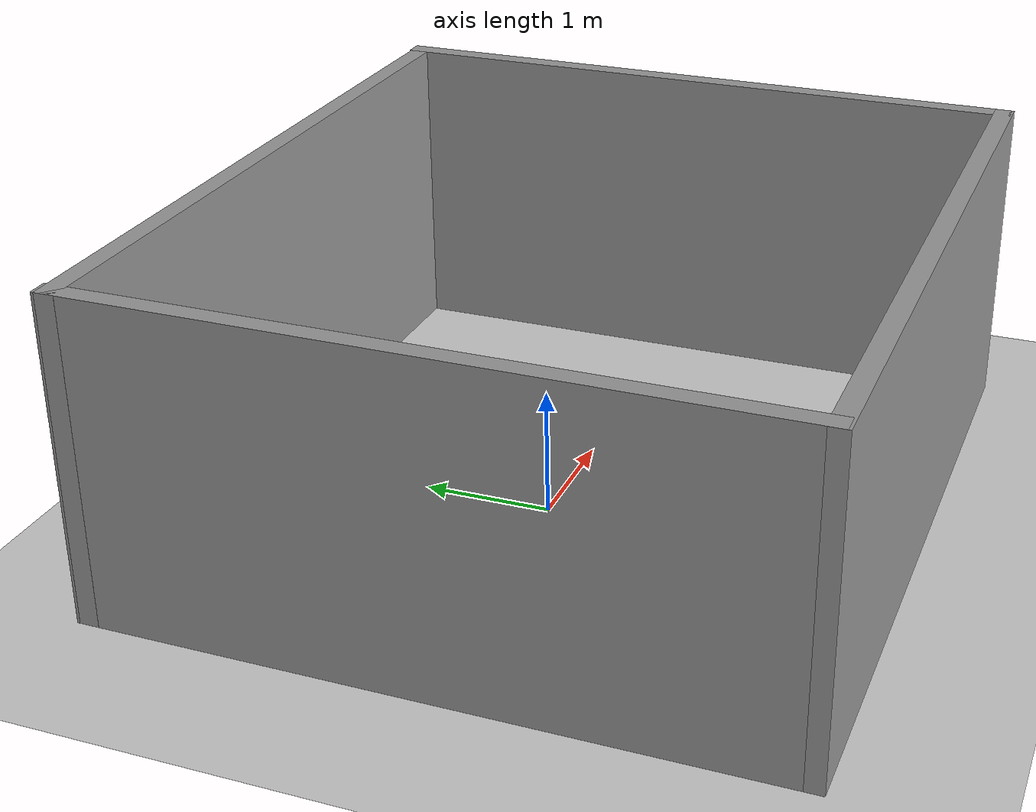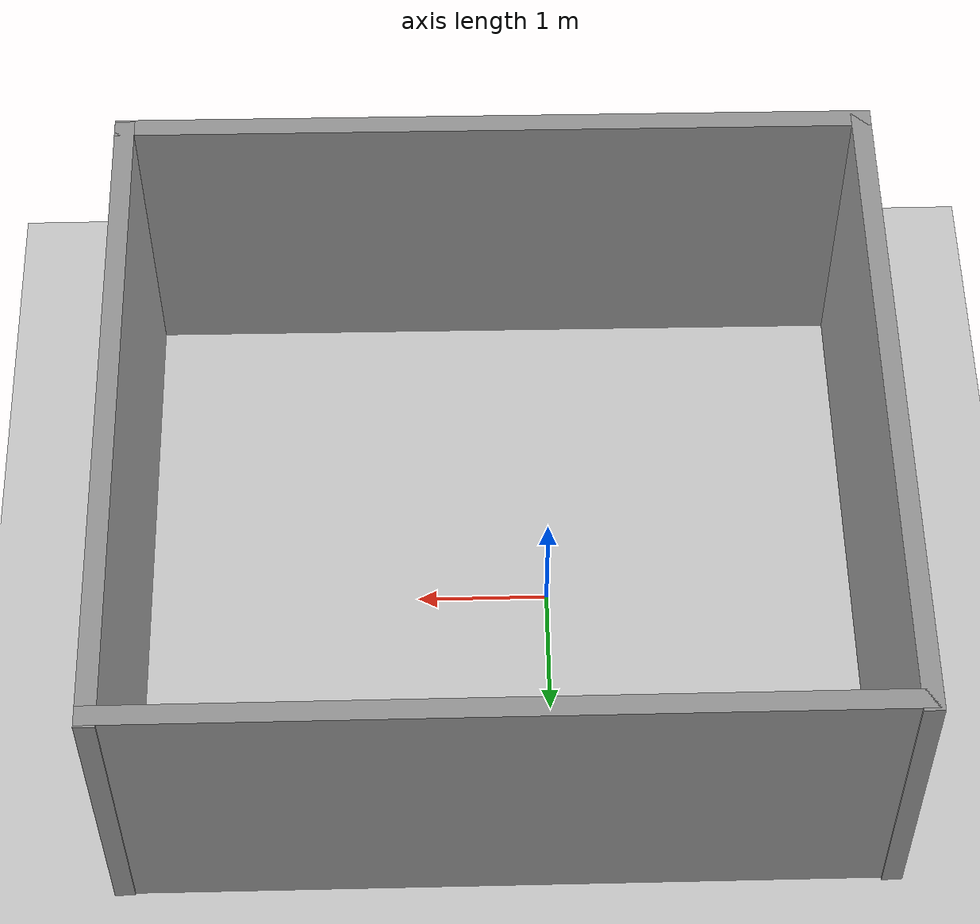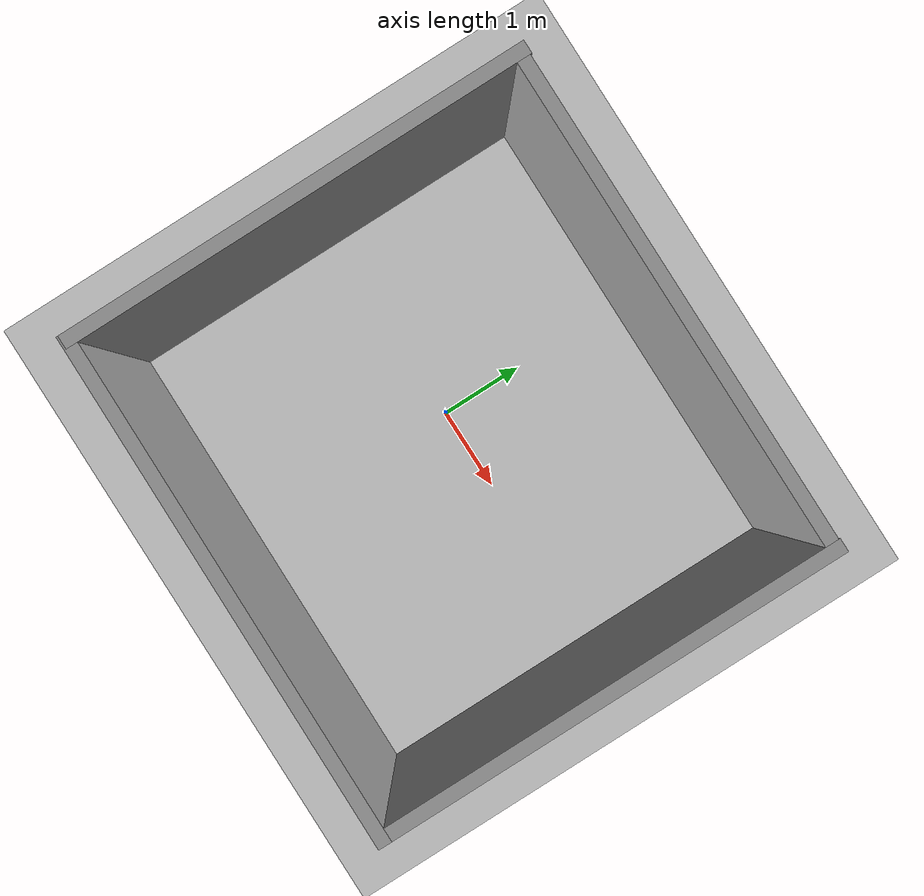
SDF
<sdf version="1.7">
 <world name="default">
  <light name="sun" type="directional">
   <pose>0 0 10 0 -0 0</pose>
   <diffuse>0.8 0.8 0.8 1</diffuse>
   <specular>0.2 0.2 0.2 1</specular>
   <attenuation>
    <range>1000</range>
    <constant>0.9</constant>
    <linear>0.01</linear>
    <quadratic>0.001</quadratic>
   </attenuation>
   <direction>-0.5 0.1 -0.9</direction>
   <spot><inner_angle>0</inner_angle><outer_angle>0</outer_angle><falloff>0</falloff></spot>
  </light>
  <model name="ground_plane">
   <static>1</static>
   <link name="link">
    <collision name="collision">
     <geometry><plane><normal>0 0 1</normal><size>100 100</size></plane></geometry>
     <surface>
      <contact><collide_bitmask>65535</collide_bitmask></contact>
      <friction><ode><mu>100</mu><mu2>50</mu2></ode></friction>
     </surface>
    </collision>
    <visual name="visual">
     <cast_shadows>0</cast_shadows>
     <geometry><plane><normal>0 0 1</normal><size>100 100</size></plane></geometry>
     <material>
      <script><uri>file://media/materials/scripts/gazebo.material</uri><name>Gazebo/Grey</name></script>
     </material>
    </visual>
   </link>
  </model>
  <gravity>0 0 -9.8</gravity>
  <magnetic_field>6e-06 2.3e-05 -4.2e-05</magnetic_field>
  <atmosphere type="adiabatic"/>
  <physics type="ode">
   <max_step_size>0.001</max_step_size>
   <real_time_factor>1</real_time_factor>
   <real_time_update_rate>1000</real_time_update_rate>
  </physics>
  <scene><ambient>0.4 0.4 0.4 1</ambient><background>0.7 0.7 0.7 1</background><shadows>1</shadows></scene>
  <spherical_coordinates>
   <surface_model>EARTH_WGS84</surface_model>
   <latitude_deg>0</latitude_deg>
   <longitude_deg>0</longitude_deg>
   <elevation>0</elevation>
   <heading_deg>0</heading_deg>
  </spherical_coordinates>
  <model name="my_world1">
   <pose>0.354001 -0.151987 0 0 -0 0</pose>
   <link name="Wall_12">
    <collision name="Wall_12_Collision">
     <geometry><box><size>5.25 0.15 2.5</size></box></geometry>
     <pose>0 0 1.25 0 -0 0</pose>
    </collision>
    <visual name="Wall_12_Visual">
     <pose>0 0 1.25 0 -0 0</pose>
     <geometry><box><size>5.25 0.15 2.5</size></box></geometry>
     <material>
      <script><uri>file://media/materials/scripts/gazebo.material</uri><name>Gazebo/Grey</name></script>
      <ambient>1 1 1 1</ambient>
     </material>
     <meta><layer>0</layer></meta>
    </visual>
    <pose>-2.80715 0.023543 0 0 -0 -1.5708</pose>
   </link>
   <link name="Wall_15">
    <collision name="Wall_15_Collision">
     <geometry><box><size>5.76498 0.15 2.5</size></box></geometry>
     <pose>0 0 1.25 0 -0 0</pose>
    </collision>
    <visual name="Wall_15_Visual">
     <pose>0 0 1.25 0 -0 0</pose>
     <geometry><box><size>5.76498 0.15 2.5</size></box></geometry>
     <material>
      <script><uri>file://media/materials/scripts/gazebo.material</uri><name>Gazebo/Grey</name></script>
      <ambient>1 1 1 1</ambient>
     </material>
     <meta><layer>0</layer></meta>
    </visual>
    <pose>0 -2.55982 0 0 -0 -0.004761</pose>
   </link>
   <link name="Wall_16">
    <collision name="Wall_16_Collision">
     <geometry><box><size>5.28088 0.15 2.5</size></box></geometry>
     <pose>0 0 1.25 0 -0 0</pose>
    </collision>
    <visual name="Wall_16_Visual">
     <pose>0 0 1.25 0 -0 0</pose>
     <geometry><box><size>5.28088 0.15 2.5</size></box></geometry>
     <material>
      <script><uri>file://media/materials/scripts/gazebo.material</uri><name>Gazebo/Grey</name></script>
      <ambient>1 1 1 1</ambient>
     </material>
     <meta><layer>0</layer></meta>
    </visual>
    <pose>2.80715 0.007376 0 0 -0 1.5708</pose>
   </link>
   <link name="Wall_17">
    <collision name="Wall_17_Collision">
     <geometry><box><size>5.76459 0.15 2.5</size></box></geometry>
     <pose>0 0 1.25 0 -0 0</pose>
    </collision>
    <visual name="Wall_17_Visual">
     <pose>0 0 1.25 0 -0 0</pose>
     <geometry><box><size>5.76459 0.15 2.5</size></box></geometry>
     <material>
      <script><uri>file://media/materials/scripts/gazebo.material</uri><name>Gazebo/Grey</name></script>
      <ambient>1 1 1 1</ambient>
     </material>
     <meta><layer>0</layer></meta>
    </visual>
    <pose>0 2.55562 0 0 -0 -3.14085</pose>
   </link>
   <static>1</static>
  </model>
 </world>
</sdf>
